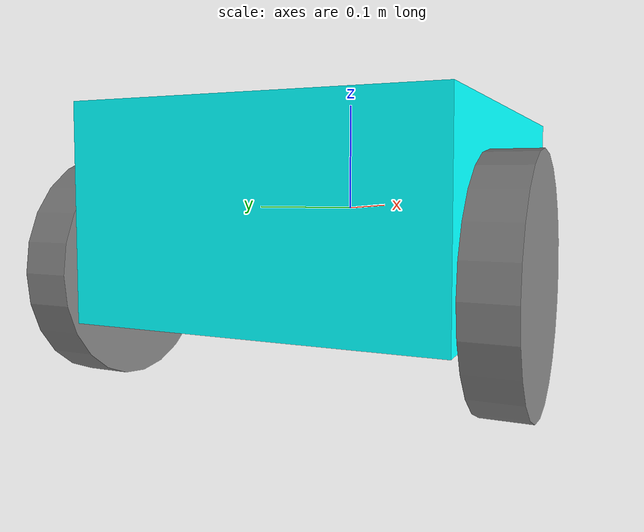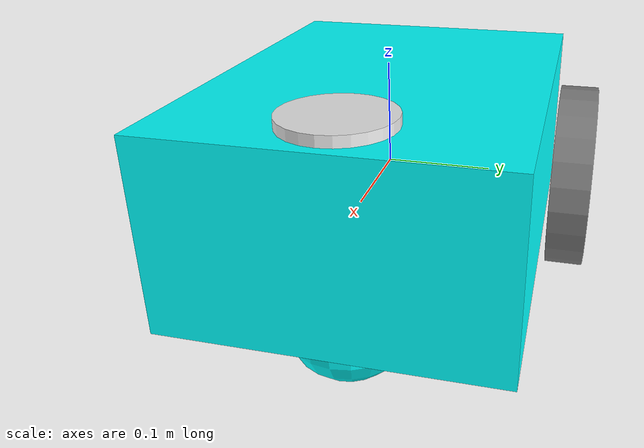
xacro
<?xml version="1.0"?>
<robot name="tribot" xmlns:xacro="http://ros.org/wiki/xacro">

  <!-- Define robot constants -->
  <xacro:property name="base_width" value="0.31" />
  <xacro:property name="base_length" value="0.42" />
  <xacro:property name="base_height" value="0.18" />

  <xacro:property name="wheel_radius" value="0.10" />
  <xacro:property name="wheel_width" value="0.04" />
  <xacro:property name="wheel_ygap" value="0.025" />
  <xacro:property name="wheel_zoff" value="0.05" />
  <xacro:property name="wheel_xoff" value="0.12" />

  <xacro:property name="caster_xoff" value="0.14" />

  <!-- Define intertial property macros  -->
  <xacro:macro name="box_inertia" params="m w h d">
    <inertial>
      <origin xyz="0 0 0" rpy="${pi/2} 0 ${pi/2}" />
      <mass value="${m}" />
      <inertia ixx="${(m/12) * (h*h + d*d)}" ixy="0.0" ixz="0.0" iyy="${(m/12) * (w*w + d*d)}" iyz="0.0" izz="${(m/12) * (w*w + h*h)}" />
    </inertial>
  </xacro:macro>

  <xacro:macro name="cylinder_inertia" params="m r h">
    <inertial>
      <origin xyz="0 0 0" rpy="${pi/2} 0 0" />
      <mass value="${m}" />
      <inertia ixx="${(m/12) * (3*r*r + h*h)}" ixy="0" ixz="0" iyy="${(m/12) * (3*r*r + h*h)}" iyz="0" izz="${(m/2) * (r*r)}" />
    </inertial>
  </xacro:macro>

  <xacro:macro name="sphere_inertia" params="m r">
    <inertial>
      <mass value="${m}" />
      <inertia ixx="${(2/5) * m * (r*r)}" ixy="0.0" ixz="0.0" iyy="${(2/5) * m * (r*r)}" iyz="0.0" izz="${(2/5) * m * (r*r)}" />
    </inertial>
  </xacro:macro>

  <!-- Robot Base -->
  <link name="base_link">
    <visual>
      <geometry>
        <box size="${base_length} ${base_width} ${base_height}" />
      </geometry>
      <material name="Cyan">
        <color rgba="0 1.0 1.0 1.0" />
      </material>
    </visual>
    <collision>
      <geometry>
        <box size="${base_length} ${base_width} ${base_height}" />
      </geometry>
    </collision>

    <xacro:box_inertia m="15" w="${base_width}" d="${base_length}" h="${base_height}" />

  </link>

  <!-- Robot Footprint -->
  <link name="base_footprint">
    <xacro:box_inertia m="0" w="0" d="0" h="0" />
  </link>

  <joint name="base_joint" type="fixed">
    <parent link="base_link" />
    <child link="base_footprint" />
    <origin xyz="0.0 0.0 ${-(wheel_radius+wheel_zoff)}" rpy="0 0 0" />
  </joint>

  <!-- Wheels -->
  <xacro:macro name="wheel" params="prefix x_reflect y_reflect">
    <link name="${prefix}_link">
      <visual>
        <origin xyz="0 0 0" rpy="${pi/2} 0 0" />
        <geometry>
          <cylinder radius="${wheel_radius}" length="${wheel_width}" />
        </geometry>
        <material name="Gray">
          <color rgba="0.5 0.5 0.5 1.0" />
        </material>
      </visual>
      <collision>
        <origin xyz="0 0 0" rpy="${pi/2} 0 0" />
        <geometry>
          <cylinder radius="${wheel_radius}" length="${wheel_width}" />
        </geometry>
      </collision>

      <xacro:cylinder_inertia m="0.5" r="${wheel_radius}" h="${wheel_width}" />
    </link>

    <joint name="${prefix}_joint" type="continuous">
      <parent link="base_link" />
      <child link="${prefix}_link" />
      <origin xyz="${x_reflect*wheel_xoff} ${y_reflect*(base_width/2+wheel_ygap)} ${-wheel_zoff}" rpy="0 0 0" />
      <axis xyz="0 1 0" />
    </joint>
  </xacro:macro>

  <xacro:wheel prefix="drivewhl_l" x_reflect="-1" y_reflect="1" />
  <xacro:wheel prefix="drivewhl_r" x_reflect="-1" y_reflect="-1" />

  <!-- Caster Wheel -->
  <link name="front_caster">
    <visual>
      <geometry>
        <sphere radius="${(wheel_radius+wheel_zoff-(base_height/2))}" />
      </geometry>
      <material name="Cyan">
        <color rgba="0 1.0 1.0 1.0" />
      </material>
    </visual>
    <collision>
      <origin xyz="0 0 0" rpy="0 0 0" />
      <geometry>
        <sphere radius="${(wheel_radius+wheel_zoff-(base_height/2))}" />
      </geometry>
    </collision>

    <xacro:sphere_inertia m="0.5" r="${(wheel_radius+wheel_zoff-(base_height/2))}" />

  </link>

  <joint name="caster_joint" type="fixed">
    <parent link="base_link" />
    <child link="front_caster" />
    <origin xyz="${caster_xoff} 0.0 ${-(base_height/2)}" rpy="0 0 0" />
  </joint>

  <!-- Imu Sensor-->
  <link name="imu_link">
    <visual>
      <geometry>
        <box size="0.1 0.1 0.1" />
      </geometry>
    </visual>

    <collision>
      <geometry>
        <box size="0.1 0.1 0.1" />
      </geometry>
    </collision>

    <xacro:box_inertia m="0.1" w="0.1" d="0.1" h="0.1" />
  </link>

  <joint name="imu_joint" type="fixed">
    <parent link="base_link" />
    <child link="imu_link" />
    <origin xyz="0 0 0.01" />
  </joint>

  <gazebo reference="imu_link">
    <sensor name="imu_sensor" type="imu">
      <plugin filename="libgazebo_ros_imu_sensor.so" name="imu_plugin">
        <ros>
          <remapping>~/out:=imu</remapping>
        </ros>
        <initial_orientation_as_reference>false</initial_orientation_as_reference>
      </plugin>
      <always_on>true</always_on>
      <update_rate>100</update_rate>
      <visualize>true</visualize>
      <imu>
        <angular_velocity>
          <x>
            <noise type="gaussian">
              <mean>0.0</mean>
              <stddev>2e-4</stddev>
              <bias_mean>0.0000075</bias_mean>
              <bias_stddev>0.0000008</bias_stddev>
            </noise>
          </x>
          <y>
            <noise type="gaussian">
              <mean>0.0</mean>
              <stddev>2e-4</stddev>
              <bias_mean>0.0000075</bias_mean>
              <bias_stddev>0.0000008</bias_stddev>
            </noise>
          </y>
          <z>
            <noise type="gaussian">
              <mean>0.0</mean>
              <stddev>2e-4</stddev>
              <bias_mean>0.0000075</bias_mean>
              <bias_stddev>0.0000008</bias_stddev>
            </noise>
          </z>
        </angular_velocity>
        <linear_acceleration>
          <x>
            <noise type="gaussian">
              <mean>0.0</mean>
              <stddev>1.7e-2</stddev>
              <bias_mean>0.1</bias_mean>
              <bias_stddev>0.001</bias_stddev>
            </noise>
          </x>
          <y>
            <noise type="gaussian">
              <mean>0.0</mean>
              <stddev>1.7e-2</stddev>
              <bias_mean>0.1</bias_mean>
              <bias_stddev>0.001</bias_stddev>
            </noise>
          </y>
          <z>
            <noise type="gaussian">
              <mean>0.0</mean>
              <stddev>1.7e-2</stddev>
              <bias_mean>0.1</bias_mean>
              <bias_stddev>0.001</bias_stddev>
            </noise>
          </z>
        </linear_acceleration>
      </imu>
    </sensor>
  </gazebo>

  <!--Laser Sensor-->
  <link name="laser_link">
    <visual>
      <origin xyz="0 0 0" rpy="0 0 0" />
      <geometry>
        <cylinder radius="0.05" length="0.1"/>
      </geometry>
      <material name="white" />
    </visual>

    <collision>
      <origin xyz="0 0 0" rpy="0 0 0"/>
      <geometry>
        <cylinder radius="0.05" length="0.1"/>
      </geometry>
    </collision>
  </link>

  <joint name="joint_sensor_laser" type="fixed">
    <origin xyz="0.15 0 0.05" rpy="0 0 0"/>
    <parent link="base_link"/>
    <child link="laser_link"/>
  </joint>

  <gazebo reference="sensor_laser">
    <sensor type="ray" name="head_hokuyo_sensor">
      <pose>0 0 0 0 0 0</pose>
      <visualize>false</visualize>
      <update_rate>20</update_rate>
      <ray>
        <scan>
          <horizontal>
            <samples>720</samples>
            <resolution>1</resolution>
            <min_angle>-1.570796</min_angle>
            <max_angle>1.570796</max_angle>
          </horizontal>
        </scan>
        <range>
          <min>0.10</min>
          <max>10.0</max>
          <resolution>0.01</resolution>
        </range>
        <noise>
          <type>gaussian</type>
          <mean>0.0</mean>
          <stddev>0.01</stddev>
        </noise>
      </ray>
      <plugin name="gazebo_ros_head_hokuyo_controller" filename="libgazebo_ros_laser.so">
        <topicName>/m2wr/laser/scan</topicName>
        <frameName>sensor_laser</frameName>
      </plugin>
    </sensor>
  </gazebo>

  <!--Differential drive plugin-->
  <gazebo>
    <plugin name='diff_drive_plugin' filename='libgazebo_ros_diff_drive.so'>
      <ros>
      </ros>

      <!-- wheels -->
      <left_joint>drivewhl_l_joint</left_joint>
      <right_joint>drivewhl_r_joint</right_joint>

      <!-- kinematics -->
      <wheel_separation>0.025</wheel_separation>
      <wheel_diameter>0.2</wheel_diameter>

      <!-- limits -->
      <max_wheel_torque>20</max_wheel_torque>
      <max_wheel_acceleration>1.0</max_wheel_acceleration>

      <!-- output -->
      <publish_odom>true</publish_odom>
      <publish_odom_tf>true</publish_odom_tf>
      <publish_wheel_tf>true</publish_wheel_tf>

      <odometry_frame>odom</odometry_frame>
      <robot_base_frame>base_link</robot_base_frame>
    </plugin>
  </gazebo>

  <!--Battery plugin-->
  <link name="battery_link">
    <inertial>
      <inertia ixx="0.00001" ixy="0.0" ixz="0.0" iyy="0.00001" iyz="0.0" izz="0.00001" />>
      <mass value="0.001" />
      <origin xyz="0 0 0" rpy="0 0 0" />
    </inertial>
  </link>

  <joint name="battery_joint" type="revolute">
    <origin xyz="0 0 0" rpy="0 0 0"/>
    <parent link="base_link"/>
    <child link="battery_link"/>
    <axis xyz="1 0 0"/>
    <limit upper="0" lower="0" effort="0" velocity="0"/>
  </joint>

  <gazebo>
    <plugin filename="libgazebo_ros_linear_battery.so"
    name="linear_battery_plugin">
      <ros>
      </ros>

      <link_name>battery_link</link_name>
      <battery_name>battery</battery_name>

      <voltage>12.592</voltage>
      <open_circuit_voltage_constant_coef>12.694</open_circuit_voltage_constant_coef>
      <open_circuit_voltage_linear_coef>-3.1424</open_circuit_voltage_linear_coef>
      <initial_charge>1.1665</initial_charge>
      <capacity>1.2009</capacity>
      <resistance>0.061523</resistance>
      <smooth_current_tau>1.9499</smooth_current_tau>
      <power_load>6.6</power_load>
      <update_rate>100</update_rate>
    </plugin>
  </gazebo>

</robot>
